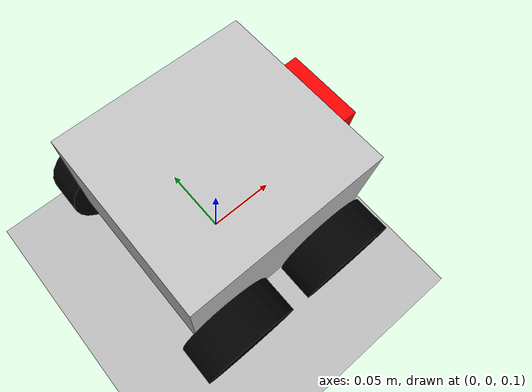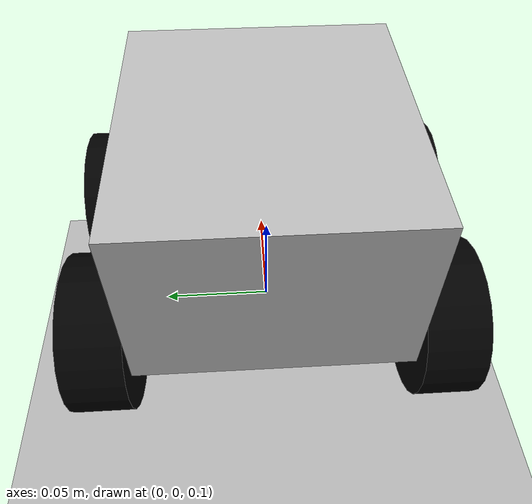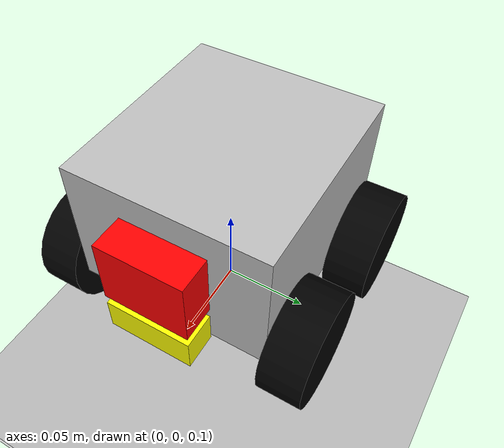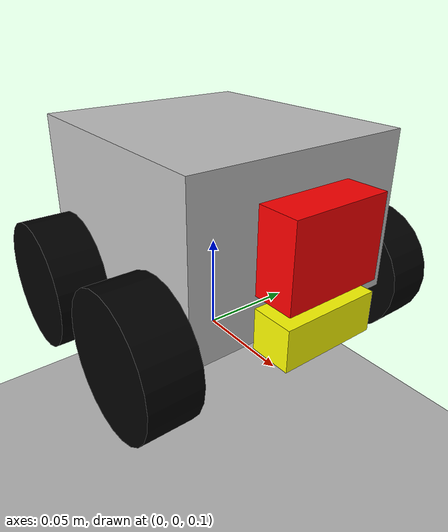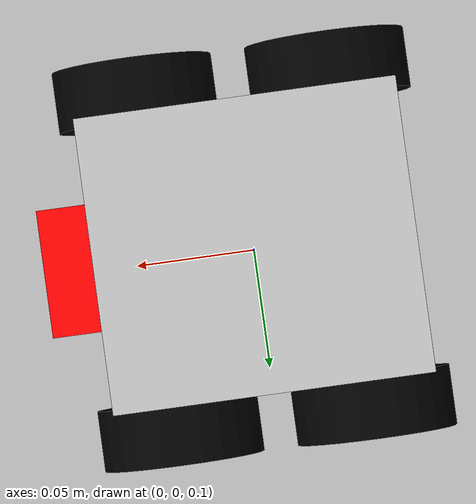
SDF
<?xml version="1.0"?>
<sdf version="1.9">
  <world name="simple_map_world">+
    <plugin
      filename="gz-sim-physics-system"
      name="gz::sim::systems::Physics">
    </plugin>
    <plugin
      filename="gz-sim-user-commands-system"
      name="gz::sim::systems::UserCommands">
    </plugin>
    <plugin
      filename="gz-sim-scene-broadcaster-system"
      name="gz::sim::systems::SceneBroadcaster">
    </plugin>

    <!-- 🌞 조명 -->
    <light type="directional" name="sun">
      <cast_shadows>true</cast_shadows>
      <pose>0 0 10 0 0 0</pose>
      <diffuse>0.8 0.8 0.8 1</diffuse>
      <specular>0.2 0.2 0.2 1</specular>
      <attenuation>
          <range>1000</range>
          <constant>0.9</constant>
          <linear>0.01</linear>
          <quadratic>0.001</quadratic>
      </attenuation>
      <direction>-0.5 0.1 -0.9</direction>
    </light>

    <!-- 🏞️ 평면 (기본 바닥) -->
    <include>
      <uri>https://fuel.gazebosim.org/1.0/OpenRobotics/models/Ground Plane</uri>
    </include>

    <!-- 🗺️ 경기장 맵 (arena_map 모델로 분리) -->
    <include>
      <uri>model://my_arena</uri>
      <name>my_arena</name>
      <pose>0 0 0.01 0 0 0</pose>
    </include>

    <!-- 🤖 simple_bot 로봇 -->
    <include>
      <uri>model://simple_bot</uri>
      <name>simple_bot</name>
      <pose>0 0 0.1 0 0 0</pose>
    </include>

  </world>
</sdf>

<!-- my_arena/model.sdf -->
<sdf version="1.4">
 <model name="my_ground_plane">
    <static>true</static>
      <link name="link">
        <visual name="visual">
          <pose>0 0 0 1.5708 0 0</pose>
          <geometry>
            <mesh>
              <uri>model://my_arena/meshes/arena.obj</uri>
            </mesh>
          </geometry>
          <material>
            <script>
              <uri>model://my_arena/materials/scripts/arena.material</uri>
              <name>MyArena/Material</name>
            </script>
          </material>
        </visual>

        <collision name="collision">
          <pose>0 0 0 1.5708 0 0</pose>
          <geometry>
            <mesh>
              <uri>model://my_arena/meshes/arena.obj</uri>
            </mesh>
          </geometry>
        </collision>
     </link>
   </model>
 </sdf>

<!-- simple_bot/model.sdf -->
<sdf version='1.11'>
  <model name='simple_bot'>
    <link name='base_link'>
      <inertial>
        <pose>0 0 0 0 0 0</pose>
        <mass>1</mass>
        <inertia>
          <ixx>0.001</ixx>
          <ixy>0</ixy>
          <ixz>0</ixz>
          <iyy>0.001</iyy>
          <iyz>0</iyz>
          <izz>0.001</izz>
        </inertia>
      </inertial>
      <collision name='base_link_fixed_joint_lump__base_collision_collision'>
        <pose>0 0 0.073000000000000009 0 0 0</pose>
        <geometry>
          <box>
            <size>0.125 0.115 0.080000000000000002</size>
          </box>
        </geometry>
      </collision>
      <visual name='base_link_visual'>
        <pose>0 0 0.073000000000000009 0 0 0</pose>
        <geometry>
          <box>
            <size>0.125 0.115 0.080000000000000002</size>
          </box>
        </geometry>
        <material>
          <diffuse>0.75000006 0.75000006 0.75000006 1</diffuse>
          <ambient>0.75000006 0.75000006 0.75000006 1</ambient>
        </material>
      </visual>
      <visual name='base_link_fixed_joint_lump__camera_link_visual_1'>
        <pose>0.072499999999999995 0 0.075999999999999998 0 0 0</pose>
        <geometry>
          <box>
            <size>0.02 0.050000000000000003 0.040000000000000001</size>
          </box>
        </geometry>
        <material>
          <diffuse>1 0 0 1</diffuse>
          <ambient>1 0 0 1</ambient>
        </material>
      </visual>
      <visual name='base_link_fixed_joint_lump__ultrasonic_link_visual_2'>
        <pose>0.072499999999999995 0 0.040000000000000001 0 0 0</pose>
        <geometry>
          <box>
            <size>0.02 0.050000000000000003 0.02</size>
          </box>
        </geometry>
        <material>
          <diffuse>1 1 0 1</diffuse>
          <ambient>1 1 0 1</ambient>
        </material>
      </visual>
    </link>
    <joint name='left_front_wheel_joint' type='revolute'>
      <pose relative_to='base_link'>0.040000000000000001 0.070000000000000007 0.033000000000000002 0 0 0</pose>
      <parent>base_link</parent>
      <child>left_front_wheel_link</child>
      <axis>
        <xyz>0 1 0</xyz>
        <limit>
          <lower>-inf</lower>
          <upper>inf</upper>
        </limit>
        <dynamics>
          <spring_reference>0</spring_reference>
          <spring_stiffness>0</spring_stiffness>
        </dynamics>
      </axis>
    </joint>
    <link name='left_front_wheel_link'>
      <pose relative_to='left_front_wheel_joint'>0 0 0 0 0 0</pose>
      <inertial>
        <pose>0 0 0 0 0 0</pose>
        <mass>0.20000000000000001</mass>
        <inertia>
          <ixx>5.5999999999999999e-05</ixx>
          <ixy>0</ixy>
          <ixz>0</ixz>
          <iyy>5.5999999999999999e-05</iyy>
          <iyz>0</iyz>
          <izz>9.0000000000000006e-05</izz>
        </inertia>
      </inertial>
      <collision name='left_front_wheel_link_fixed_joint_lump__left_front_wheel_collision_collision'>
        <pose>0 0 0 1.5708 0 0</pose>
        <geometry>
          <cylinder>
            <length>0.025000000000000001</length>
            <radius>0.033000000000000002</radius>
          </cylinder>
        </geometry>
      </collision>
      <visual name='left_front_wheel_link_visual'>
        <pose>0 0 0 1.5708 0 0</pose>
        <geometry>
          <cylinder>
            <length>0.025000000000000001</length>
            <radius>0.033000000000000002</radius>
          </cylinder>
        </geometry>
        <material>
          <diffuse>0 0 0 1</diffuse>
          <ambient>0 0 0 1</ambient>
        </material>
      </visual>
    </link>
    <joint name='left_rear_wheel_joint' type='revolute'>
      <pose relative_to='base_link'>-0.040000000000000001 0.070000000000000007 0.033000000000000002 0 0 0</pose>
      <parent>base_link</parent>
      <child>left_rear_wheel_link</child>
      <axis>
        <xyz>0 1 0</xyz>
        <limit>
          <lower>-inf</lower>
          <upper>inf</upper>
        </limit>
        <dynamics>
          <spring_reference>0</spring_reference>
          <spring_stiffness>0</spring_stiffness>
        </dynamics>
      </axis>
    </joint>
    <link name='left_rear_wheel_link'>
      <pose relative_to='left_rear_wheel_joint'>0 0 0 0 0 0</pose>
      <inertial>
        <pose>0 0 0 0 0 0</pose>
        <mass>0.20000000000000001</mass>
        <inertia>
          <ixx>5.5999999999999999e-05</ixx>
          <ixy>0</ixy>
          <ixz>0</ixz>
          <iyy>5.5999999999999999e-05</iyy>
          <iyz>0</iyz>
          <izz>9.0000000000000006e-05</izz>
        </inertia>
      </inertial>
      <collision name='left_rear_wheel_link_fixed_joint_lump__left_rear_wheel_collision_collision'>
        <pose>0 0 0 1.5708 0 0</pose>
        <geometry>
          <cylinder>
            <length>0.025000000000000001</length>
            <radius>0.033000000000000002</radius>
          </cylinder>
        </geometry>
      </collision>
      <visual name='left_rear_wheel_link_visual'>
        <pose>0 0 0 1.5708 0 0</pose>
        <geometry>
          <cylinder>
            <length>0.025000000000000001</length>
            <radius>0.033000000000000002</radius>
          </cylinder>
        </geometry>
        <material>
          <diffuse>0 0 0 1</diffuse>
          <ambient>0 0 0 1</ambient>
        </material>
      </visual>
    </link>
    <joint name='right_front_wheel_joint' type='revolute'>
      <pose relative_to='base_link'>0.040000000000000001 -0.070000000000000007 0.033000000000000002 0 0 0</pose>
      <parent>base_link</parent>
      <child>right_front_wheel_link</child>
      <axis>
        <xyz>0 1 0</xyz>
        <limit>
          <lower>-inf</lower>
          <upper>inf</upper>
        </limit>
        <dynamics>
          <spring_reference>0</spring_reference>
          <spring_stiffness>0</spring_stiffness>
        </dynamics>
      </axis>
    </joint>
    <link name='right_front_wheel_link'>
      <pose relative_to='right_front_wheel_joint'>0 0 0 0 0 0</pose>
      <inertial>
        <pose>0 0 0 0 0 0</pose>
        <mass>0.20000000000000001</mass>
        <inertia>
          <ixx>5.5999999999999999e-05</ixx>
          <ixy>0</ixy>
          <ixz>0</ixz>
          <iyy>5.5999999999999999e-05</iyy>
          <iyz>0</iyz>
          <izz>9.0000000000000006e-05</izz>
        </inertia>
      </inertial>
      <collision name='right_front_wheel_link_fixed_joint_lump__right_front_wheel_collision_collision'>
        <pose>0 0 0 1.5708 0 0</pose>
        <geometry>
          <cylinder>
            <length>0.025000000000000001</length>
            <radius>0.033000000000000002</radius>
          </cylinder>
        </geometry>
      </collision>
      <visual name='right_front_wheel_link_visual'>
        <pose>0 0 0 1.5708 0 0</pose>
        <geometry>
          <cylinder>
            <length>0.025000000000000001</length>
            <radius>0.033000000000000002</radius>
          </cylinder>
        </geometry>
        <material>
          <diffuse>0 0 0 1</diffuse>
          <ambient>0 0 0 1</ambient>
        </material>
      </visual>
    </link>
    <joint name='right_rear_wheel_joint' type='revolute'>
      <pose relative_to='base_link'>-0.040000000000000001 -0.070000000000000007 0.033000000000000002 0 0 0</pose>
      <parent>base_link</parent>
      <child>right_rear_wheel_link</child>
      <axis>
        <xyz>0 1 0</xyz>
        <limit>
          <lower>-inf</lower>
          <upper>inf</upper>
        </limit>
        <dynamics>
          <spring_reference>0</spring_reference>
          <spring_stiffness>0</spring_stiffness>
        </dynamics>
      </axis>
    </joint>
    <link name='right_rear_wheel_link'>
      <pose relative_to='right_rear_wheel_joint'>0 0 0 0 0 0</pose>
      <inertial>
        <pose>0 0 0 0 0 0</pose>
        <mass>0.20000000000000001</mass>
        <inertia>
          <ixx>5.5999999999999999e-05</ixx>
          <ixy>0</ixy>
          <ixz>0</ixz>
          <iyy>5.5999999999999999e-05</iyy>
          <iyz>0</iyz>
          <izz>9.0000000000000006e-05</izz>
        </inertia>
      </inertial>
      <visual name='right_rear_wheel_link_visual'>
        <pose>0 0 0 1.5708 0 0</pose>
        <geometry>
          <cylinder>
            <length>0.025000000000000001</length>
            <radius>0.033000000000000002</radius>
          </cylinder>
        </geometry>
        <material>
          <diffuse>0 0 0 1</diffuse>
          <ambient>0 0 0 1</ambient>
        </material>
      </visual>
    </link>
    <frame name='camera_joint' attached_to='base_link'>
      <pose>0.072499999999999995 0 0.075999999999999998 0 0 0</pose>
    </frame>
    <frame name='camera_link' attached_to='camera_joint'>
      <pose>0 0 0 0 0 0</pose>
    </frame>
    <frame name='ultrasonic_joint' attached_to='base_link'>
      <pose>0.072499999999999995 0 0.040000000000000001 0 0 0</pose>
    </frame>
    <frame name='ultrasonic_link' attached_to='ultrasonic_joint'>
      <pose>0 0 0 0 0 0</pose>
    </frame>
  </model>
</sdf>
